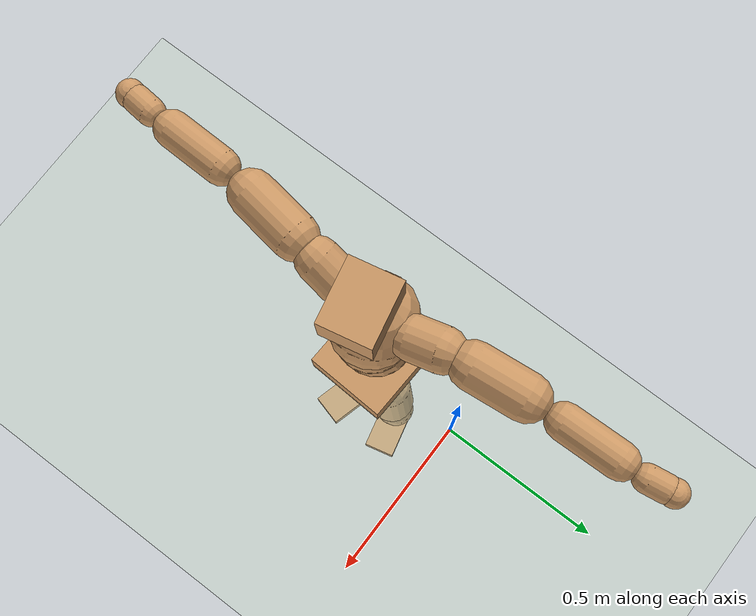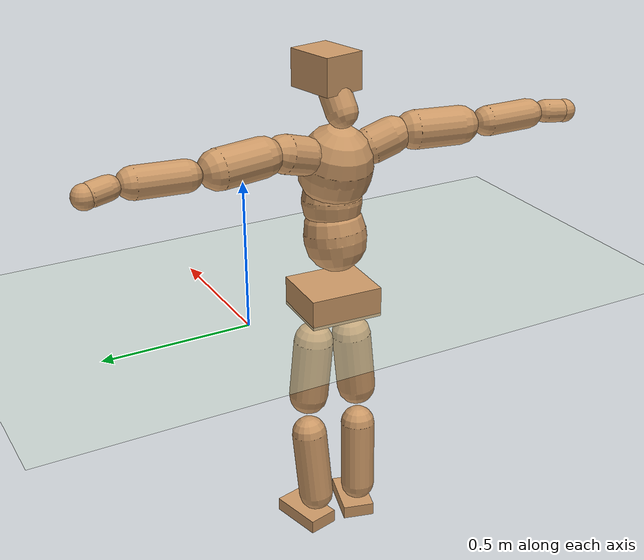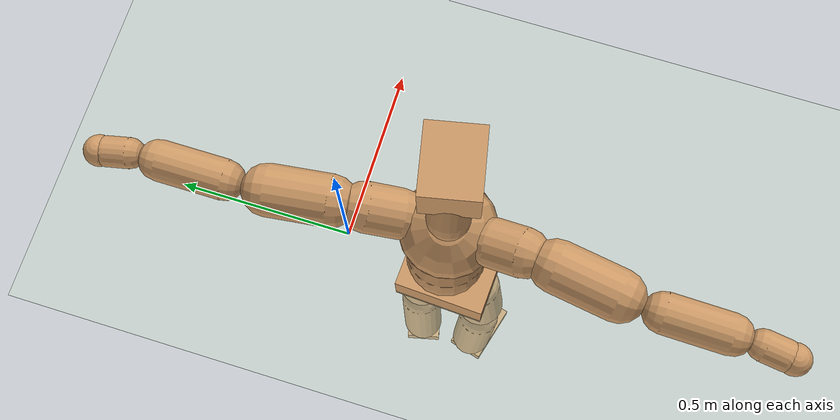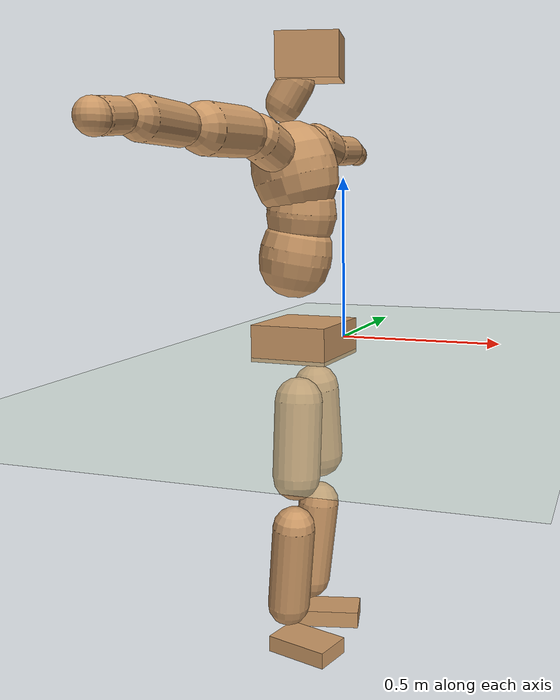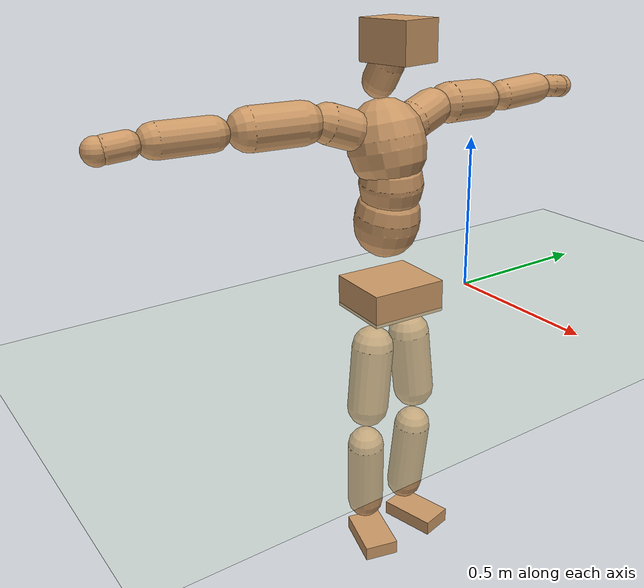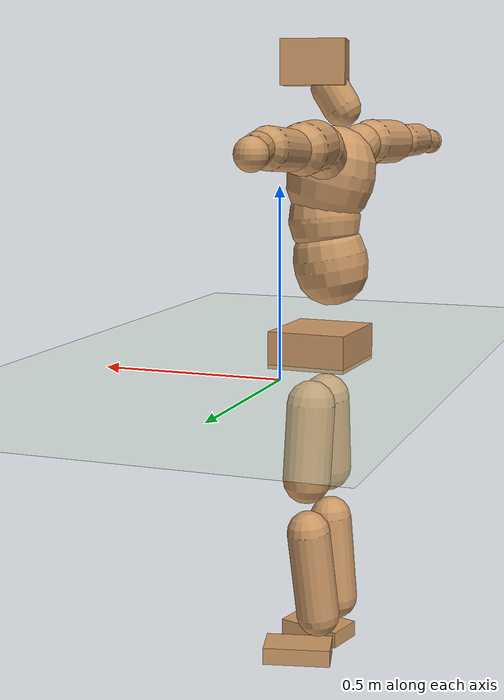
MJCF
<mujoco model="humanoid">
  <compiler coordinate="local" angle="radian"/>
  <default>
    <joint damping="0.0" armature="0.01" stiffness="0.0" limited="true"/>
    <geom conaffinity="1" condim="3" contype="7" margin="0.001" rgba="0.8 0.6 .4 1"/>
  </default>
  <asset>
    <texture type="skybox" builtin="gradient" rgb1=".4 .5 .6" rgb2="0 0 0" width="100" height="100"/>
    <texture builtin="flat" height="1278" mark="cross" markrgb="1 1 1" name="texgeom" random="0.01" rgb1="0.8 0.6 0.4" rgb2="0.8 0.6 0.4" type="cube" width="127"/>
    <texture builtin="checker" height="100" name="texplane" rgb1="0 0 0" rgb2="0.8 0.8 0.8" type="2d" width="100"/>
    <material name="MatPlane" reflectance="0.5" shininess="1" specular="1" texrepeat="60 60" texture="texplane"/>
    <material name="geom" texture="texgeom" texuniform="true"/>
  </asset>
  <worldbody>
    <light cutoff="100" diffuse="1 1 1" dir="-0 0 -1.3" directional="true" exponent="1" pos="0 0 1.3" specular=".1 .1 .1"/>
    <geom conaffinity="1" condim="3" name="floor" pos="0 0 0" rgba="0.8 0.9 0.8 1" size="100 100 .2" type="plane" material="MatPlane"/>
    <body name="Pelvis" pos="-0.0031 -0.309 0.0462">
      <freejoint name="Pelvis"/>
      <geom type="box" contype="1" conaffinity="1" density="500" pos="-0.0110 0.0005 -0.0078" size="0.1102 0.1251 0.0518" quat="0.9997 0.0000 0.0000 -0.0242" name="Pelvis"/>
      <body name="L_Hip" pos="-0.0083 0.0672 -0.0923">
        <joint name="L_Hip_x" type="hinge" pos="0 0 0" axis="1 0 0" stiffness="800" damping="80" armature="0.02" range="-180.0000 180.0000"/>
        <joint name="L_Hip_y" type="hinge" pos="0 0 0" axis="0 1 0" stiffness="800" damping="80" armature="0.02" range="-180.0000 180.0000"/>
        <joint name="L_Hip_z" type="hinge" pos="0 0 0" axis="0 0 1" stiffness="800" damping="80" armature="0.02" range="-180.0000 180.0000"/>
        <geom type="capsule" contype="1" conaffinity="1" density="500" fromto="0.0018 0.0066 -0.0709 0.0070 0.0264 -0.2837" size="0.0678" name="L_Hip"/>
        <body name="L_Knee" pos="0.0088 0.033 -0.3546">
          <joint name="L_Knee_x" type="hinge" pos="0 0 0" axis="1 0 0" stiffness="800" damping="80" armature="0.02" range="-180.0000 180.0000"/>
          <joint name="L_Knee_y" type="hinge" pos="0 0 0" axis="0 1 0" stiffness="800" damping="80" armature="0.02" range="-180.0000 180.0000"/>
          <joint name="L_Knee_z" type="hinge" pos="0 0 0" axis="0 0 1" stiffness="800" damping="80" armature="0.02" range="-180.0000 180.0000"/>
          <geom type="capsule" contype="1" conaffinity="1" density="500" fromto="-0.0088 -0.0037 -0.0826 -0.0352 -0.0149 -0.3303" size="0.0615" name="L_Knee"/>
          <body name="L_Ankle" pos="-0.0439 -0.0186 -0.4129">
            <joint name="L_Ankle_x" type="hinge" pos="0 0 0" axis="1 0 0" stiffness="800" damping="80" armature="0.02" range="-180.0000 180.0000"/>
            <joint name="L_Ankle_y" type="hinge" pos="0 0 0" axis="0 1 0" stiffness="800" damping="80" armature="0.02" range="-180.0000 180.0000"/>
            <joint name="L_Ankle_z" type="hinge" pos="0 0 0" axis="0 0 1" stiffness="800" damping="80" armature="0.02" range="-180.0000 180.0000"/>
            <geom type="box" contype="1" conaffinity="1" density="500" pos="0.0653 0.0154 -0.0301" size="0.0961 0.0533 0.0246" quat="0.9933 0.0000 0.0000 0.1157" name="L_Ankle"/>
            <body name="L_Toe" pos="0.1306 0.0308 -0.0602">
              <joint name="L_Toe_x" type="hinge" pos="0 0 0" axis="1 0 0" stiffness="500" damping="50" armature="0.02" range="-180.0000 180.0000"/>
              <joint name="L_Toe_y" type="hinge" pos="0 0 0" axis="0 1 0" stiffness="500" damping="50" armature="0.02" range="-180.0000 180.0000"/>
              <joint name="L_Toe_z" type="hinge" pos="0 0 0" axis="0 0 1" stiffness="500" damping="50" armature="0.02" range="-180.0000 180.0000"/>
              <geom type="box" contype="1" conaffinity="1" density="500" pos="0.0000 0.0000 0.0307" size="0.0011 0.0026 0.0013" quat="0.9926 0.0000 0.0000 0.1211" name="L_Toe"/>
            </body>
          </body>
        </body>
      </body>
      <body name="R_Hip" pos="-0.0029 -0.0682 -0.1013">
        <joint name="R_Hip_x" type="hinge" pos="0 0 0" axis="1 0 0" stiffness="800" damping="80" armature="0.02" range="-180.0000 180.0000"/>
        <joint name="R_Hip_y" type="hinge" pos="0 0 0" axis="0 1 0" stiffness="800" damping="80" armature="0.02" range="-180.0000 180.0000"/>
        <joint name="R_Hip_z" type="hinge" pos="0 0 0" axis="0 0 1" stiffness="800" damping="80" armature="0.02" range="-180.0000 180.0000"/>
        <geom type="capsule" contype="1" conaffinity="1" density="500" fromto="-0.0005 -0.0070 -0.0720 -0.0020 -0.0279 -0.2879" size="0.0679" name="R_Hip"/>
        <body name="R_Knee" pos="-0.0025 -0.0349 -0.3598">
          <joint name="R_Knee_x" type="hinge" pos="0 0 0" axis="1 0 0" stiffness="800" damping="80" armature="0.02" range="-180.0000 180.0000"/>
          <joint name="R_Knee_y" type="hinge" pos="0 0 0" axis="0 1 0" stiffness="800" damping="80" armature="0.02" range="-180.0000 180.0000"/>
          <joint name="R_Knee_z" type="hinge" pos="0 0 0" axis="0 0 1" stiffness="800" damping="80" armature="0.02" range="-180.0000 180.0000"/>
          <geom type="capsule" contype="1" conaffinity="1" density="500" fromto="-0.0081 0.0043 -0.0816 -0.0322 0.0171 -0.3264" size="0.0611" name="R_Knee"/>
          <body name="R_Ankle" pos="-0.0403 0.0213 -0.408">
            <joint name="R_Ankle_x" type="hinge" pos="0 0 0" axis="1 0 0" stiffness="800" damping="80" armature="0.02" range="-180.0000 180.0000"/>
            <joint name="R_Ankle_y" type="hinge" pos="0 0 0" axis="0 1 0" stiffness="800" damping="80" armature="0.02" range="-180.0000 180.0000"/>
            <joint name="R_Ankle_z" type="hinge" pos="0 0 0" axis="0 0 1" stiffness="800" damping="80" armature="0.02" range="-180.0000 180.0000"/>
            <geom type="box" contype="1" conaffinity="1" density="500" pos="0.0691 -0.0188 -0.0302" size="0.0947 0.0561 0.0236" quat="0.9912 0.0000 0.0000 -0.1325" name="R_Ankle"/>
            <body name="R_Toe" pos="0.1382 -0.0376 -0.0603">
              <joint name="R_Toe_x" type="hinge" pos="0 0 0" axis="1 0 0" stiffness="500" damping="50" armature="0.02" range="-180.0000 180.0000"/>
              <joint name="R_Toe_y" type="hinge" pos="0 0 0" axis="0 1 0" stiffness="500" damping="50" armature="0.02" range="-180.0000 180.0000"/>
              <joint name="R_Toe_z" type="hinge" pos="0 0 0" axis="0 0 1" stiffness="500" damping="50" armature="0.02" range="-180.0000 180.0000"/>
              <geom type="box" contype="1" conaffinity="1" density="500" pos="0.0000 0.0000 0.0327" size="0.0012 0.0028 0.0013" quat="0.9923 0.0000 0.0000 -0.1241" name="R_Toe"/>
            </body>
          </body>
        </body>
      </body>
      <body name="Torso" pos="-0.0546 0.0043 0.1468">
        <joint name="Torso_x" type="hinge" pos="0 0 0" axis="1 0 0" stiffness="1000" damping="100" armature="0.02" range="-180.0000 180.0000"/>
        <joint name="Torso_y" type="hinge" pos="0 0 0" axis="0 1 0" stiffness="1000" damping="100" armature="0.02" range="-180.0000 180.0000"/>
        <joint name="Torso_z" type="hinge" pos="0 0 0" axis="0 0 1" stiffness="1000" damping="100" armature="0.02" range="-180.0000 180.0000"/>
        <geom type="capsule" contype="1" conaffinity="1" density="500" fromto="0.0176 0.0045 0.0995 0.0117 0.0030 0.0663" size="0.1036" name="Torso"/>
        <body name="Spine" pos="0.0294 0.0075 0.1658">
          <joint name="Spine_x" type="hinge" pos="0 0 0" axis="1 0 0" stiffness="1000" damping="100" armature="0.02" range="-180.0000 180.0000"/>
          <joint name="Spine_y" type="hinge" pos="0 0 0" axis="0 1 0" stiffness="1000" damping="100" armature="0.02" range="-180.0000 180.0000"/>
          <joint name="Spine_z" type="hinge" pos="0 0 0" axis="0 0 1" stiffness="1000" damping="100" armature="0.02" range="-180.0000 180.0000"/>
          <geom type="capsule" contype="1" conaffinity="1" density="500" fromto="0.0041 -0.0017 0.0413 0.0027 -0.0012 0.0275" size="0.0997" name="Spine"/>
          <body name="Chest" pos="0.0068 -0.0029 0.0688">
            <joint name="Chest_x" type="hinge" pos="0 0 0" axis="1 0 0" stiffness="1000" damping="100" armature="0.02" range="-180.0000 180.0000"/>
            <joint name="Chest_y" type="hinge" pos="0 0 0" axis="0 1 0" stiffness="1000" damping="100" armature="0.02" range="-180.0000 180.0000"/>
            <joint name="Chest_z" type="hinge" pos="0 0 0" axis="0 0 1" stiffness="1000" damping="100" armature="0.02" range="-180.0000 180.0000"/>
            <geom type="capsule" contype="1" conaffinity="1" density="500" fromto="-0.0240 -0.0051 0.1022 -0.0160 -0.0034 0.0681" size="0.1208" name="Chest"/>
            <body name="Neck" pos="-0.0579 -0.0133 0.2496">
              <joint name="Neck_x" type="hinge" pos="0 0 0" axis="1 0 0" stiffness="500" damping="50" armature="0.02" range="-180.0000 180.0000"/>
              <joint name="Neck_y" type="hinge" pos="0 0 0" axis="0 1 0" stiffness="500" damping="50" armature="0.02" range="-180.0000 180.0000"/>
              <joint name="Neck_z" type="hinge" pos="0 0 0" axis="0 0 1" stiffness="500" damping="50" armature="0.02" range="-180.0000 180.0000"/>
              <geom type="capsule" contype="1" conaffinity="1" density="500" fromto="0.0110 0.0020 0.0182 0.0442 0.0081 0.0729" size="0.0519" name="Neck"/>
              <body name="Head" pos="0.0552 0.0101 0.0912">
                <joint name="Head_x" type="hinge" pos="0 0 0" axis="1 0 0" stiffness="500" damping="50" armature="0.02" range="-180.0000 180.0000"/>
                <joint name="Head_y" type="hinge" pos="0 0 0" axis="0 1 0" stiffness="500" damping="50" armature="0.02" range="-180.0000 180.0000"/>
                <joint name="Head_z" type="hinge" pos="0 0 0" axis="0 0 1" stiffness="500" damping="50" armature="0.02" range="-180.0000 180.0000"/>
                <geom type="box" contype="1" conaffinity="1" density="500" pos="0.0286 0.0060 0.0466" size="0.0866 0.0705 0.0604" quat="0.9946 0.0000 0.0000 0.1039" name="Head"/>
              </body>
            </body>
            <body name="L_Thorax" pos="-0.0283 0.0805 0.132">
              <joint name="L_Thorax_x" type="hinge" pos="0 0 0" axis="1 0 0" stiffness="500" damping="50" armature="0.02" range="-180.0000 180.0000"/>
              <joint name="L_Thorax_y" type="hinge" pos="0 0 0" axis="0 1 0" stiffness="500" damping="50" armature="0.02" range="-180.0000 180.0000"/>
              <joint name="L_Thorax_z" type="hinge" pos="0 0 0" axis="0 0 1" stiffness="500" damping="50" armature="0.02" range="-180.0000 180.0000"/>
              <geom type="capsule" contype="1" conaffinity="1" density="500" fromto="-0.0054 0.0278 0.0087 -0.0218 0.1111 0.0347" size="0.0616" name="L_Thorax"/>
              <body name="L_Shoulder" pos="-0.0272 0.1388 0.0434">
                <joint name="L_Shoulder_x" type="hinge" pos="0 0 0" axis="1 0 0" stiffness="500" damping="50" armature="0.02" range="-720.0000 720.0000"/>
                <joint name="L_Shoulder_y" type="hinge" pos="0 0 0" axis="0 1 0" stiffness="500" damping="50" armature="0.02" range="-720.0000 720.0000"/>
                <joint name="L_Shoulder_z" type="hinge" pos="0 0 0" axis="0 0 1" stiffness="500" damping="50" armature="0.02" range="-720.0000 720.0000"/>
                <geom type="capsule" contype="1" conaffinity="1" density="500" fromto="-0.0056 0.0503 -0.0021 -0.0225 0.2012 -0.0085" size="0.0643" name="L_Shoulder"/>
                <body name="L_Elbow" pos="-0.0281 0.2515 -0.0106">
                  <joint name="L_Elbow_x" type="hinge" pos="0 0 0" axis="1 0 0" stiffness="500" damping="50" armature="0.02" range="-720.0000 720.0000"/>
                  <joint name="L_Elbow_y" type="hinge" pos="0 0 0" axis="0 1 0" stiffness="500" damping="50" armature="0.02" range="-720.0000 720.0000"/>
                  <joint name="L_Elbow_z" type="hinge" pos="0 0 0" axis="0 0 1" stiffness="500" damping="50" armature="0.02" range="-720.0000 720.0000"/>
                  <geom type="capsule" contype="1" conaffinity="1" density="500" fromto="-0.0008 0.0538 0.0029 -0.0033 0.2153 0.0115" size="0.0499" name="L_Elbow"/>
                  <body name="L_Wrist" pos="-0.0041 0.2691 0.0144">
                    <joint name="L_Wrist_x" type="hinge" pos="0 0 0" axis="1 0 0" stiffness="300" damping="30" armature="0.02" range="-180.0000 180.0000"/>
                    <joint name="L_Wrist_y" type="hinge" pos="0 0 0" axis="0 1 0" stiffness="300" damping="30" armature="0.02" range="-180.0000 180.0000"/>
                    <joint name="L_Wrist_z" type="hinge" pos="0 0 0" axis="0 0 1" stiffness="300" damping="30" armature="0.02" range="-180.0000 180.0000"/>
                    <geom type="capsule" contype="1" conaffinity="1" density="500" fromto="-0.0032 0.0186 -0.0023 -0.0128 0.0742 -0.0091" size="0.0377" name="L_Wrist"/>
                    <body name="L_Hand" pos="-0.016 0.0928 -0.0114">
                      <joint name="L_Hand_x" type="hinge" pos="0 0 0" axis="1 0 0" stiffness="300" damping="30" armature="0.02" range="-180.0000 180.0000"/>
                      <joint name="L_Hand_y" type="hinge" pos="0 0 0" axis="0 1 0" stiffness="300" damping="30" armature="0.02" range="-180.0000 180.0000"/>
                      <joint name="L_Hand_z" type="hinge" pos="0 0 0" axis="0 0 1" stiffness="300" damping="30" armature="0.02" range="-180.0000 180.0000"/>
                      <geom type="sphere" contype="1" conaffinity="1" density="500" size="0.0384" pos="0.0000 0.0000 0.0000" name="L_Hand"/>
                    </body>
                  </body>
                </body>
              </body>
            </body>
            <body name="R_Thorax" pos="-0.034 -0.0925 0.1292">
              <joint name="R_Thorax_x" type="hinge" pos="0 0 0" axis="1 0 0" stiffness="500" damping="50" armature="0.02" range="-180.0000 180.0000"/>
              <joint name="R_Thorax_y" type="hinge" pos="0 0 0" axis="0 1 0" stiffness="500" damping="50" armature="0.02" range="-180.0000 180.0000"/>
              <joint name="R_Thorax_z" type="hinge" pos="0 0 0" axis="0 0 1" stiffness="500" damping="50" armature="0.02" range="-180.0000 180.0000"/>
              <geom type="capsule" contype="1" conaffinity="1" density="500" fromto="-0.0029 -0.0256 0.0089 -0.0116 -0.1024 0.0355" size="0.0609" name="R_Thorax"/>
              <body name="R_Shoulder" pos="-0.0145 -0.1281 0.0444">
                <joint name="R_Shoulder_x" type="hinge" pos="0 0 0" axis="1 0 0" stiffness="500" damping="50" armature="0.02" range="-720.0000 720.0000"/>
                <joint name="R_Shoulder_y" type="hinge" pos="0 0 0" axis="0 1 0" stiffness="500" damping="50" armature="0.02" range="-720.0000 720.0000"/>
                <joint name="R_Shoulder_z" type="hinge" pos="0 0 0" axis="0 0 1" stiffness="500" damping="50" armature="0.02" range="-720.0000 720.0000"/>
                <geom type="capsule" contype="1" conaffinity="1" density="500" fromto="-0.0078 -0.0521 -0.0007 -0.0312 -0.2084 -0.0029" size="0.0642" name="R_Shoulder"/>
                <body name="R_Elbow" pos="-0.039 -0.2606 -0.0036">
                  <joint name="R_Elbow_x" type="hinge" pos="0 0 0" axis="1 0 0" stiffness="500" damping="50" armature="0.02" range="-720.0000 720.0000"/>
                  <joint name="R_Elbow_y" type="hinge" pos="0 0 0" axis="0 1 0" stiffness="500" damping="50" armature="0.02" range="-720.0000 720.0000"/>
                  <joint name="R_Elbow_z" type="hinge" pos="0 0 0" axis="0 0 1" stiffness="500" damping="50" armature="0.02" range="-720.0000 720.0000"/>
                  <geom type="capsule" contype="1" conaffinity="1" density="500" fromto="-0.0010 -0.0534 0.0006 -0.0040 -0.2137 0.0025" size="0.0501" name="R_Elbow"/>
                  <body name="R_Wrist" pos="-0.005 -0.2671 0.0031">
                    <joint name="R_Wrist_x" type="hinge" pos="0 0 0" axis="1 0 0" stiffness="300" damping="30" armature="0.02" range="-180.0000 180.0000"/>
                    <joint name="R_Wrist_y" type="hinge" pos="0 0 0" axis="0 1 0" stiffness="300" damping="30" armature="0.02" range="-180.0000 180.0000"/>
                    <joint name="R_Wrist_z" type="hinge" pos="0 0 0" axis="0 0 1" stiffness="300" damping="30" armature="0.02" range="-180.0000 180.0000"/>
                    <geom type="capsule" contype="1" conaffinity="1" density="500" fromto="-0.0020 -0.0191 -0.0019 -0.0081 -0.0765 -0.0075" size="0.0385" name="R_Wrist"/>
                    <body name="R_Hand" pos="-0.0101 -0.0956 -0.0094">
                      <joint name="R_Hand_x" type="hinge" pos="0 0 0" axis="1 0 0" stiffness="300" damping="30" armature="0.02" range="-180.0000 180.0000"/>
                      <joint name="R_Hand_y" type="hinge" pos="0 0 0" axis="0 1 0" stiffness="300" damping="30" armature="0.02" range="-180.0000 180.0000"/>
                      <joint name="R_Hand_z" type="hinge" pos="0 0 0" axis="0 0 1" stiffness="300" damping="30" armature="0.02" range="-180.0000 180.0000"/>
                      <geom type="sphere" contype="1" conaffinity="1" density="500" size="0.0391" pos="0.0000 0.0000 0.0000" name="R_Hand"/>
                    </body>
                  </body>
                </body>
              </body>
            </body>
          </body>
        </body>
      </body>
    </body>
  </worldbody>
  <actuator>
    <motor name="L_Hip_x" joint="L_Hip_x" gear="500"/>
    <motor name="L_Hip_y" joint="L_Hip_y" gear="500"/>
    <motor name="L_Hip_z" joint="L_Hip_z" gear="500"/>
    <motor name="L_Knee_x" joint="L_Knee_x" gear="500"/>
    <motor name="L_Knee_y" joint="L_Knee_y" gear="500"/>
    <motor name="L_Knee_z" joint="L_Knee_z" gear="500"/>
    <motor name="L_Ankle_x" joint="L_Ankle_x" gear="500"/>
    <motor name="L_Ankle_y" joint="L_Ankle_y" gear="500"/>
    <motor name="L_Ankle_z" joint="L_Ankle_z" gear="500"/>
    <motor name="L_Toe_x" joint="L_Toe_x" gear="500"/>
    <motor name="L_Toe_y" joint="L_Toe_y" gear="500"/>
    <motor name="L_Toe_z" joint="L_Toe_z" gear="500"/>
    <motor name="R_Hip_x" joint="R_Hip_x" gear="500"/>
    <motor name="R_Hip_y" joint="R_Hip_y" gear="500"/>
    <motor name="R_Hip_z" joint="R_Hip_z" gear="500"/>
    <motor name="R_Knee_x" joint="R_Knee_x" gear="500"/>
    <motor name="R_Knee_y" joint="R_Knee_y" gear="500"/>
    <motor name="R_Knee_z" joint="R_Knee_z" gear="500"/>
    <motor name="R_Ankle_x" joint="R_Ankle_x" gear="500"/>
    <motor name="R_Ankle_y" joint="R_Ankle_y" gear="500"/>
    <motor name="R_Ankle_z" joint="R_Ankle_z" gear="500"/>
    <motor name="R_Toe_x" joint="R_Toe_x" gear="500"/>
    <motor name="R_Toe_y" joint="R_Toe_y" gear="500"/>
    <motor name="R_Toe_z" joint="R_Toe_z" gear="500"/>
    <motor name="Torso_x" joint="Torso_x" gear="500"/>
    <motor name="Torso_y" joint="Torso_y" gear="500"/>
    <motor name="Torso_z" joint="Torso_z" gear="500"/>
    <motor name="Spine_x" joint="Spine_x" gear="500"/>
    <motor name="Spine_y" joint="Spine_y" gear="500"/>
    <motor name="Spine_z" joint="Spine_z" gear="500"/>
    <motor name="Chest_x" joint="Chest_x" gear="500"/>
    <motor name="Chest_y" joint="Chest_y" gear="500"/>
    <motor name="Chest_z" joint="Chest_z" gear="500"/>
    <motor name="Neck_x" joint="Neck_x" gear="500"/>
    <motor name="Neck_y" joint="Neck_y" gear="500"/>
    <motor name="Neck_z" joint="Neck_z" gear="500"/>
    <motor name="Head_x" joint="Head_x" gear="500"/>
    <motor name="Head_y" joint="Head_y" gear="500"/>
    <motor name="Head_z" joint="Head_z" gear="500"/>
    <motor name="L_Thorax_x" joint="L_Thorax_x" gear="500"/>
    <motor name="L_Thorax_y" joint="L_Thorax_y" gear="500"/>
    <motor name="L_Thorax_z" joint="L_Thorax_z" gear="500"/>
    <motor name="L_Shoulder_x" joint="L_Shoulder_x" gear="500"/>
    <motor name="L_Shoulder_y" joint="L_Shoulder_y" gear="500"/>
    <motor name="L_Shoulder_z" joint="L_Shoulder_z" gear="500"/>
    <motor name="L_Elbow_x" joint="L_Elbow_x" gear="500"/>
    <motor name="L_Elbow_y" joint="L_Elbow_y" gear="500"/>
    <motor name="L_Elbow_z" joint="L_Elbow_z" gear="500"/>
    <motor name="L_Wrist_x" joint="L_Wrist_x" gear="500"/>
    <motor name="L_Wrist_y" joint="L_Wrist_y" gear="500"/>
    <motor name="L_Wrist_z" joint="L_Wrist_z" gear="500"/>
    <motor name="L_Hand_x" joint="L_Hand_x" gear="500"/>
    <motor name="L_Hand_y" joint="L_Hand_y" gear="500"/>
    <motor name="L_Hand_z" joint="L_Hand_z" gear="500"/>
    <motor name="R_Thorax_x" joint="R_Thorax_x" gear="500"/>
    <motor name="R_Thorax_y" joint="R_Thorax_y" gear="500"/>
    <motor name="R_Thorax_z" joint="R_Thorax_z" gear="500"/>
    <motor name="R_Shoulder_x" joint="R_Shoulder_x" gear="500"/>
    <motor name="R_Shoulder_y" joint="R_Shoulder_y" gear="500"/>
    <motor name="R_Shoulder_z" joint="R_Shoulder_z" gear="500"/>
    <motor name="R_Elbow_x" joint="R_Elbow_x" gear="500"/>
    <motor name="R_Elbow_y" joint="R_Elbow_y" gear="500"/>
    <motor name="R_Elbow_z" joint="R_Elbow_z" gear="500"/>
    <motor name="R_Wrist_x" joint="R_Wrist_x" gear="500"/>
    <motor name="R_Wrist_y" joint="R_Wrist_y" gear="500"/>
    <motor name="R_Wrist_z" joint="R_Wrist_z" gear="500"/>
    <motor name="R_Hand_x" joint="R_Hand_x" gear="500"/>
    <motor name="R_Hand_y" joint="R_Hand_y" gear="500"/>
    <motor name="R_Hand_z" joint="R_Hand_z" gear="500"/>
  </actuator>
  <contact>
    <exclude body1="Torso" body2="Chest"/>
    <exclude body1="Head" body2="Chest"/>
    <exclude body1="R_Knee" body2="R_Toe"/>
    <exclude body1="R_Knee" body2="L_Ankle"/>
    <exclude body1="R_Knee" body2="L_Toe"/>
    <exclude body1="L_Knee" body2="L_Toe"/>
    <exclude body1="L_Knee" body2="R_Ankle"/>
    <exclude body1="L_Knee" body2="R_Toe"/>
    <exclude body1="L_Shoulder" body2="Chest"/>
    <exclude body1="R_Shoulder" body2="Chest"/>
  </contact>
  <sensor/>
  <size njmax="700" nconmax="700"/>
</mujoco>
